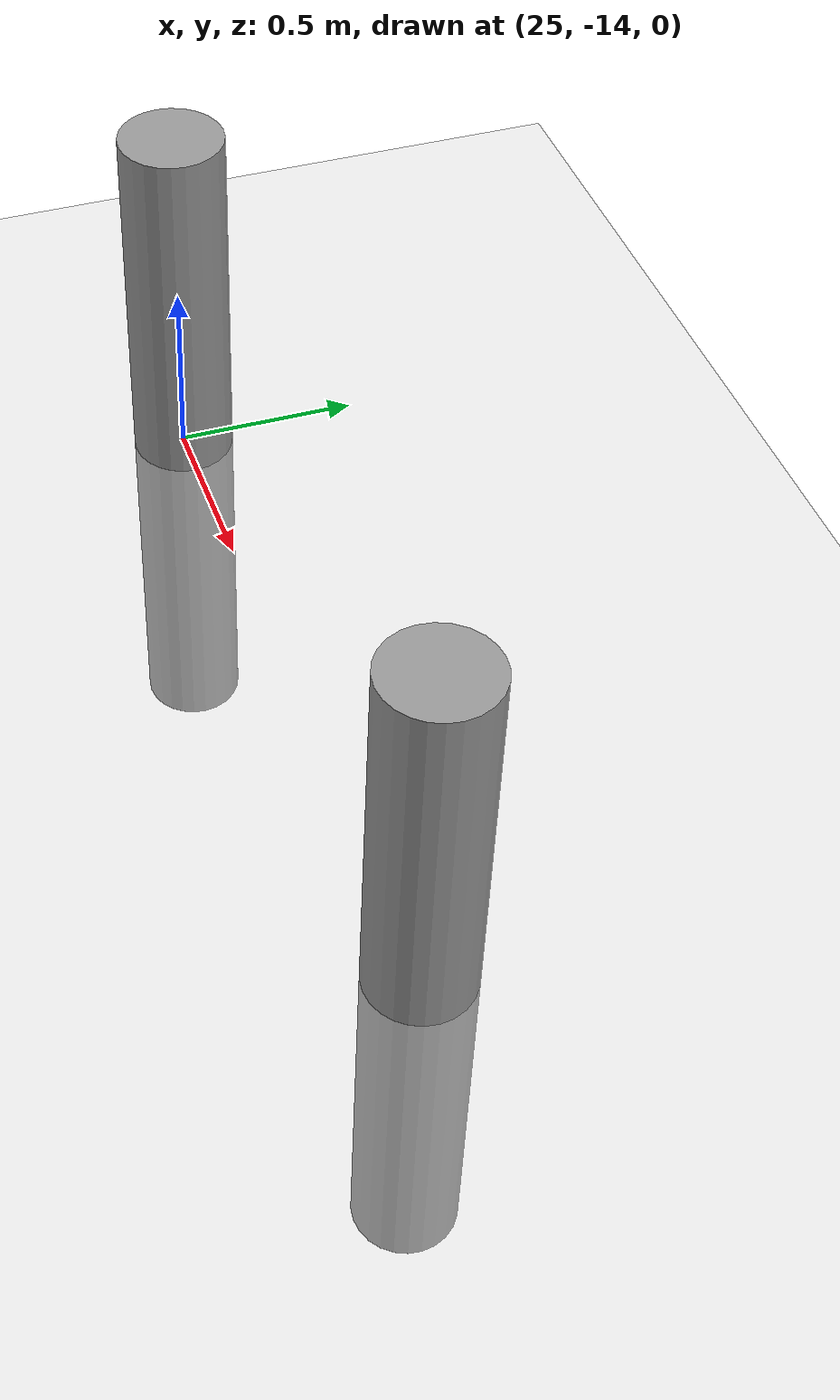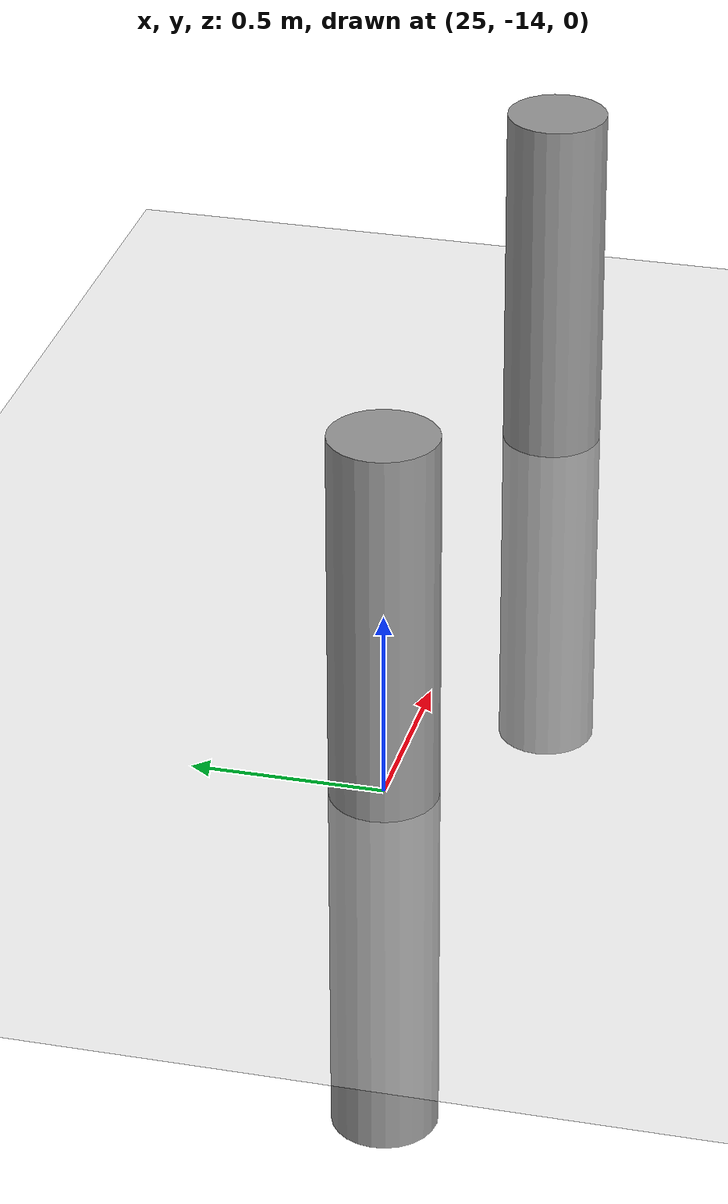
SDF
<sdf version="1.6">
 <world name="default">
  <model name="ground_plane">
   <static>1</static>
   <link name="link">
    <collision name="collision">
     <geometry><plane><normal>0 0 1</normal><size>100 100</size></plane></geometry>
     <surface><friction><ode><mu>100</mu><mu2>50</mu2></ode></friction></surface>
    </collision>
    <visual name="visual">
     <cast_shadows>0</cast_shadows>
     <geometry><plane><normal>0 0 1</normal><size>100 100</size></plane></geometry>
     <material>
      <script><uri>file://media/materials/scripts/gazebo.material</uri><name>Gazebo/Grey</name></script>
     </material>
    </visual>
   </link>
  </model>
  <model name="my_cylinder014_clone_2_0">
   <pose>27 -14 0 0 -0 0</pose>
   <link name="my_cylinder014::link">
    <inertial>
     <mass>1</mass>
     <inertia><ixx>0.145833</ixx><ixy>0</ixy><ixz>0</ixz><iyy>0.145833</iyy><iyz>0</iyz><izz>0.125</izz></inertia>
    </inertial>
    <visual name="visual">
     <geometry><cylinder><radius>0.14</radius><length>2</length></cylinder></geometry>
     <material>
      <script><name>Gazebo/Grey</name><uri>file://media/materials/scripts/gazebo.material</uri></script>
      <ambient>0.3 0.3 0.3 1</ambient>
      <diffuse>0.7 0.7 0.7 1</diffuse>
      <specular>1 0.01 0.01 1</specular>
      <emissive>0 0 0 1</emissive>
      <shader type="vertex"><normal_map>__default__</normal_map></shader>
     </material>
    </visual>
    <collision name="collision">
     <geometry><cylinder><radius>0.14</radius><length>2</length></cylinder></geometry>
     <surface>
      <friction>
       <ode><mu>1</mu><mu2>1</mu2><fdir1>0 0 0</fdir1><slip1>0</slip1><slip2>0</slip2></ode>
       <torsional>
        <coefficient>1</coefficient>
        <patch_radius>0</patch_radius>
        <surface_radius>0</surface_radius>
        <use_patch_radius>1</use_patch_radius>
        <ode><slip>0</slip></ode>
       </torsional>
      </friction>
      <bounce><restitution_coefficient>0</restitution_coefficient><threshold>1e+06</threshold></bounce>
      <contact>
       <collide_without_contact>0</collide_without_contact>
       <collide_without_contact_bitmask>1</collide_without_contact_bitmask>
       <collide_bitmask>1</collide_bitmask>
       <ode>
        <soft_cfm>0</soft_cfm>
        <soft_erp>0.2</soft_erp>
        <kp>1e+13</kp>
        <kd>1</kd>
        <max_vel>0.01</max_vel>
        <min_depth>0</min_depth>
       </ode>
       <bullet>
        <split_impulse>1</split_impulse>
        <split_impulse_penetration_threshold>-0.01</split_impulse_penetration_threshold>
        <soft_cfm>0</soft_cfm>
        <soft_erp>0.2</soft_erp>
        <kp>1e+13</kp>
        <kd>1</kd>
       </bullet>
      </contact>
     </surface>
    </collision>
   </link>
   <static>1</static>
  </model>
  <model name="my_cylinder014_clone_1_1">
   <pose>25 -14 0 0 -0 0</pose>
   <link name="my_cylinder014::link">
    <inertial>
     <mass>1</mass>
     <inertia><ixx>0.145833</ixx><ixy>0</ixy><ixz>0</ixz><iyy>0.145833</iyy><iyz>0</iyz><izz>0.125</izz></inertia>
    </inertial>
    <visual name="visual">
     <geometry><cylinder><radius>0.14</radius><length>2</length></cylinder></geometry>
     <material>
      <script><name>Gazebo/Grey</name><uri>file://media/materials/scripts/gazebo.material</uri></script>
      <ambient>0.3 0.3 0.3 1</ambient>
      <diffuse>0.7 0.7 0.7 1</diffuse>
      <specular>1 0.01 0.01 1</specular>
      <emissive>0 0 0 1</emissive>
      <shader type="vertex"><normal_map>__default__</normal_map></shader>
     </material>
    </visual>
    <collision name="collision">
     <geometry><cylinder><radius>0.14</radius><length>2</length></cylinder></geometry>
     <surface>
      <friction>
       <ode><mu>1</mu><mu2>1</mu2><fdir1>0 0 0</fdir1><slip1>0</slip1><slip2>0</slip2></ode>
       <torsional>
        <coefficient>1</coefficient>
        <patch_radius>0</patch_radius>
        <surface_radius>0</surface_radius>
        <use_patch_radius>1</use_patch_radius>
        <ode><slip>0</slip></ode>
       </torsional>
      </friction>
      <bounce><restitution_coefficient>0</restitution_coefficient><threshold>1e+06</threshold></bounce>
      <contact>
       <collide_without_contact>0</collide_without_contact>
       <collide_without_contact_bitmask>1</collide_without_contact_bitmask>
       <collide_bitmask>1</collide_bitmask>
       <ode>
        <soft_cfm>0</soft_cfm>
        <soft_erp>0.2</soft_erp>
        <kp>1e+13</kp>
        <kd>1</kd>
        <max_vel>0.01</max_vel>
        <min_depth>0</min_depth>
       </ode>
       <bullet>
        <split_impulse>1</split_impulse>
        <split_impulse_penetration_threshold>-0.01</split_impulse_penetration_threshold>
        <soft_cfm>0</soft_cfm>
        <soft_erp>0.2</soft_erp>
        <kp>1e+13</kp>
        <kd>1</kd>
       </bullet>
      </contact>
     </surface>
    </collision>
   </link>
   <static>1</static>
  </model>
  <model name="my_cylinder014_clone_1_1">
   <pose>25 -14 0 0 -0 0</pose>
   <link name="my_cylinder014::link">
    <inertial>
     <mass>1</mass>
     <inertia><ixx>0.145833</ixx><ixy>0</ixy><ixz>0</ixz><iyy>0.145833</iyy><iyz>0</iyz><izz>0.125</izz></inertia>
    </inertial>
    <visual name="visual">
     <geometry><cylinder><radius>0.14</radius><length>2</length></cylinder></geometry>
     <material>
      <script><name>Gazebo/Grey</name><uri>file://media/materials/scripts/gazebo.material</uri></script>
      <ambient>0.3 0.3 0.3 1</ambient>
      <diffuse>0.7 0.7 0.7 1</diffuse>
      <specular>1 0.01 0.01 1</specular>
      <emissive>0 0 0 1</emissive>
      <shader type="vertex"><normal_map>__default__</normal_map></shader>
     </material>
    </visual>
    <collision name="collision">
     <geometry><cylinder><radius>0.14</radius><length>2</length></cylinder></geometry>
     <surface>
      <friction>
       <ode><mu>1</mu><mu2>1</mu2><fdir1>0 0 0</fdir1><slip1>0</slip1><slip2>0</slip2></ode>
       <torsional>
        <coefficient>1</coefficient>
        <patch_radius>0</patch_radius>
        <surface_radius>0</surface_radius>
        <use_patch_radius>1</use_patch_radius>
        <ode><slip>0</slip></ode>
       </torsional>
      </friction>
      <bounce><restitution_coefficient>0</restitution_coefficient><threshold>1e+06</threshold></bounce>
      <contact>
       <collide_without_contact>0</collide_without_contact>
       <collide_without_contact_bitmask>1</collide_without_contact_bitmask>
       <collide_bitmask>1</collide_bitmask>
       <ode>
        <soft_cfm>0</soft_cfm>
        <soft_erp>0.2</soft_erp>
        <kp>1e+13</kp>
        <kd>1</kd>
        <max_vel>0.01</max_vel>
        <min_depth>0</min_depth>
       </ode>
       <bullet>
        <split_impulse>1</split_impulse>
        <split_impulse_penetration_threshold>-0.01</split_impulse_penetration_threshold>
        <soft_cfm>0</soft_cfm>
        <soft_erp>0.2</soft_erp>
        <kp>1e+13</kp>
        <kd>1</kd>
       </bullet>
      </contact>
     </surface>
    </collision>
   </link>
   <static>1</static>
  </model>
 </world>
</sdf>
